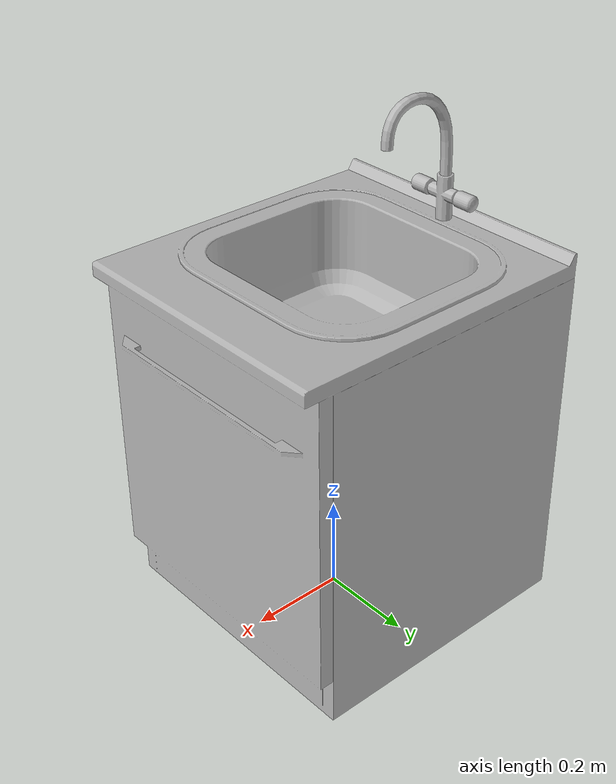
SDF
<?xml version='1.0'?>
<sdf version='1.4'>
  <model name='295'>
    <pose>0 0 0 0 0 0</pose>
    <static>true</static>
    <link name='link'>
      <collision name='collision'>
        <pose>0 0 0 0 0 0</pose>
        <geometry>
          <box>
            <size>0.66 0.6 2</size>
          </box>
        </geometry>
      </collision>
      <visual name='visual'>
        <pose>0 0 0 0 0 0</pose>
        <geometry>
          <mesh><uri>model://295/295.dae</uri></mesh>
        </geometry>
      </visual>
    </link>
  </model>
</sdf>
